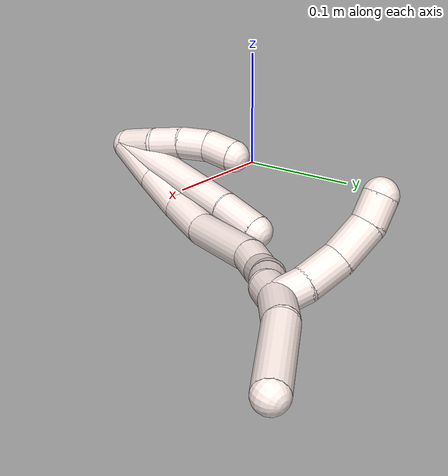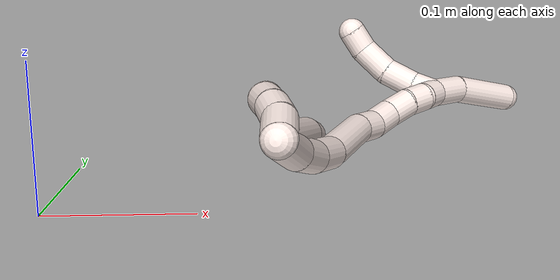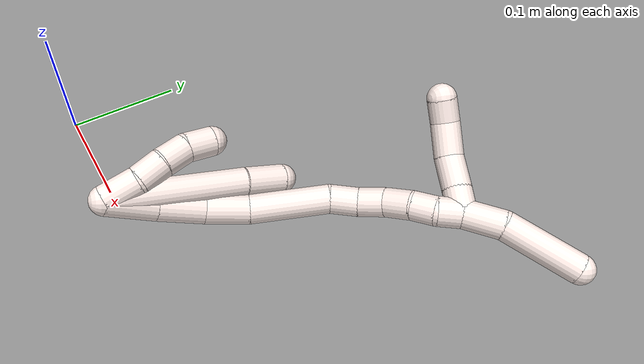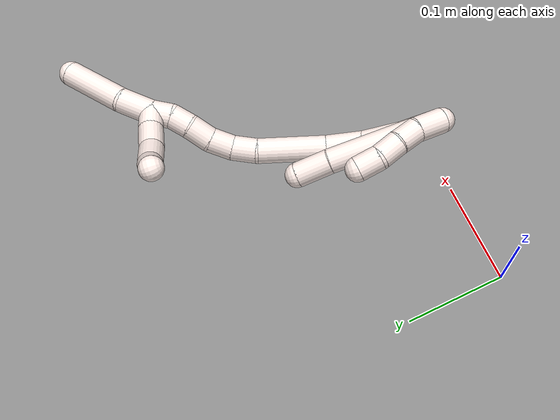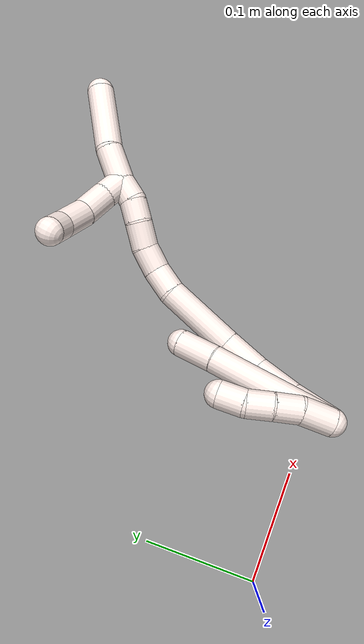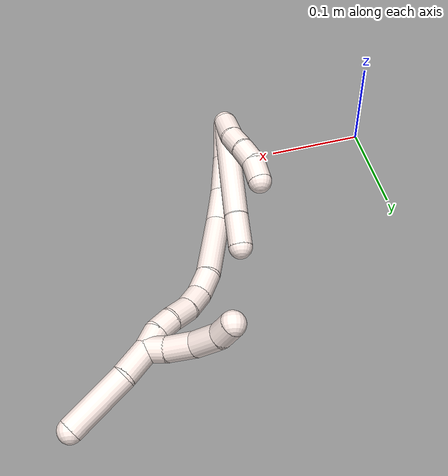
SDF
<sdf version="1.7">
 <world name="default">
  <model name="11">
   <static>0</static>
   <link name="11">
    <collision name="collision-cylinder-e_1_2_8">
     <pose>3.7e-05 -0.00117 0.057671 0.020279 0.000648 7e-06</pose>
     <geometry><cylinder><radius>0.0125</radius><length>0.115367</length></cylinder></geometry>
     <surface>
      <friction><ode><mu>1.16</mu><mu2>1.16</mu2><slip1>0</slip1><slip2>0</slip2></ode></friction>
      <contact><ode><kp>1e+06</kp><kd>1</kd><max_vel>0</max_vel><min_depth>0.001</min_depth></ode></contact>
     </surface>
    </collision>
    <visual name="visual-cylinder-e_1_2_8">
     <pose>3.7e-05 -0.00117 0.057671 0.020279 0.000648 7e-06</pose>
     <geometry><cylinder><radius>0.0125</radius><length>0.115367</length></cylinder></geometry>
     <material><ambient>1 0.933333 0.909804 1</ambient></material>
    </visual>
    <collision name="collision-cylinder-e_2_8_6">
     <pose>-0.001343 -0.002594 0.1326 0.014763 -0.081945 -0.000605</pose>
     <geometry><cylinder><radius>0.0125</radius><length>0.034633</length></cylinder></geometry>
     <surface>
      <friction><ode><mu>1.16</mu><mu2>1.16</mu2><slip1>0</slip1><slip2>0</slip2></ode></friction>
      <contact><ode><kp>1e+06</kp><kd>1</kd><max_vel>0</max_vel><min_depth>0.001</min_depth></ode></contact>
     </surface>
    </collision>
    <visual name="visual-cylinder-e_2_8_6">
     <pose>-0.001343 -0.002594 0.1326 0.014763 -0.081945 -0.000605</pose>
     <geometry><cylinder><radius>0.0125</radius><length>0.034633</length></cylinder></geometry>
     <material><ambient>1 0.933333 0.909804 1</ambient></material>
    </visual>
    <collision name="collision-cylinder-e_1_2_9">
     <pose>0.004799 -0.004649 0.01312 0.340519 0.331984 0.05759</pose>
     <geometry><cylinder><radius>0.0125</radius><length>0.029446</length></cylinder></geometry>
     <surface>
      <friction><ode><mu>1.16</mu><mu2>1.16</mu2><slip1>0</slip1><slip2>0</slip2></ode></friction>
      <contact><ode><kp>1e+06</kp><kd>1</kd><max_vel>0</max_vel><min_depth>0.001</min_depth></ode></contact>
     </surface>
    </collision>
    <visual name="visual-cylinder-e_1_2_9">
     <pose>0.004799 -0.004649 0.01312 0.340519 0.331984 0.05759</pose>
     <geometry><cylinder><radius>0.0125</radius><length>0.029446</length></cylinder></geometry>
     <material><ambient>1 0.933333 0.909804 1</ambient></material>
    </visual>
    <collision name="collision-cylinder-e_2_9_10">
     <pose>0.011746 -0.015148 0.036308 0.526453 0.182494 0.049305</pose>
     <geometry><cylinder><radius>0.0125</radius><length>0.023682</length></cylinder></geometry>
     <surface>
      <friction><ode><mu>1.16</mu><mu2>1.16</mu2><slip1>0</slip1><slip2>0</slip2></ode></friction>
      <contact><ode><kp>1e+06</kp><kd>1</kd><max_vel>0</max_vel><min_depth>0.001</min_depth></ode></contact>
     </surface>
    </collision>
    <visual name="visual-cylinder-e_2_9_10">
     <pose>0.011746 -0.015148 0.036308 0.526453 0.182494 0.049305</pose>
     <geometry><cylinder><radius>0.0125</radius><length>0.023682</length></cylinder></geometry>
     <material><ambient>1 0.933333 0.909804 1</ambient></material>
    </visual>
    <collision name="collision-cylinder-e_3_10_11">
     <pose>0.014445 -0.026365 0.05669 0.479695 0.047307 0.011571</pose>
     <geometry><cylinder><radius>0.0125</radius><length>0.023281</length></cylinder></geometry>
     <surface>
      <friction><ode><mu>1.16</mu><mu2>1.16</mu2><slip1>0</slip1><slip2>0</slip2></ode></friction>
      <contact><ode><kp>1e+06</kp><kd>1</kd><max_vel>0</max_vel><min_depth>0.001</min_depth></ode></contact>
     </surface>
    </collision>
    <visual name="visual-cylinder-e_3_10_11">
     <pose>0.014445 -0.026365 0.05669 0.479695 0.047307 0.011571</pose>
     <geometry><cylinder><radius>0.0125</radius><length>0.023281</length></cylinder></geometry>
     <material><ambient>1 0.933333 0.909804 1</ambient></material>
    </visual>
    <collision name="collision-cylinder-e_4_11_5">
     <pose>0.01475 -0.033948 0.078588 0.189084 -0.020889 -0.001981</pose>
     <geometry><cylinder><radius>0.0125</radius><length>0.023591</length></cylinder></geometry>
     <surface>
      <friction><ode><mu>1.16</mu><mu2>1.16</mu2><slip1>0</slip1><slip2>0</slip2></ode></friction>
      <contact><ode><kp>1e+06</kp><kd>1</kd><max_vel>0</max_vel><min_depth>0.001</min_depth></ode></contact>
     </surface>
    </collision>
    <visual name="visual-cylinder-e_4_11_5">
     <pose>0.01475 -0.033948 0.078588 0.189084 -0.020889 -0.001981</pose>
     <geometry><cylinder><radius>0.0125</radius><length>0.023591</length></cylinder></geometry>
     <material><ambient>1 0.933333 0.909804 1</ambient></material>
    </visual>
    <collision name="collision-cylinder-e_1_2_12">
     <pose>-0.003792 0.003484 0.020176 -0.17098 -0.183142 0.015739</pose>
     <geometry><cylinder><radius>0.0125</radius><length>0.041646</length></cylinder></geometry>
     <surface>
      <friction><ode><mu>1.16</mu><mu2>1.16</mu2><slip1>0</slip1><slip2>0</slip2></ode></friction>
      <contact><ode><kp>1e+06</kp><kd>1</kd><max_vel>0</max_vel><min_depth>0.001</min_depth></ode></contact>
     </surface>
    </collision>
    <visual name="visual-cylinder-e_1_2_12">
     <pose>-0.003792 0.003484 0.020176 -0.17098 -0.183142 0.015739</pose>
     <geometry><cylinder><radius>0.0125</radius><length>0.041646</length></cylinder></geometry>
     <material><ambient>1 0.933333 0.909804 1</ambient></material>
    </visual>
    <collision name="collision-cylinder-e_2_12_13">
     <pose>-0.008593 0.010498 0.059695 -0.180516 -0.051222 0.004637</pose>
     <geometry><cylinder><radius>0.0125</radius><length>0.039376</length></cylinder></geometry>
     <surface>
      <friction><ode><mu>1.16</mu><mu2>1.16</mu2><slip1>0</slip1><slip2>0</slip2></ode></friction>
      <contact><ode><kp>1e+06</kp><kd>1</kd><max_vel>0</max_vel><min_depth>0.001</min_depth></ode></contact>
     </surface>
    </collision>
    <visual name="visual-cylinder-e_2_12_13">
     <pose>-0.008593 0.010498 0.059695 -0.180516 -0.051222 0.004637</pose>
     <geometry><cylinder><radius>0.0125</radius><length>0.039376</length></cylinder></geometry>
     <material><ambient>1 0.933333 0.909804 1</ambient></material>
    </visual>
    <collision name="collision-cylinder-e_3_13_14">
     <pose>-0.007439 0.017431 0.097266 -0.184611 0.116041 -0.010754</pose>
     <geometry><cylinder><radius>0.0125</radius><length>0.037336</length></cylinder></geometry>
     <surface>
      <friction><ode><mu>1.16</mu><mu2>1.16</mu2><slip1>0</slip1><slip2>0</slip2></ode></friction>
      <contact><ode><kp>1e+06</kp><kd>1</kd><max_vel>0</max_vel><min_depth>0.001</min_depth></ode></contact>
     </surface>
    </collision>
    <visual name="visual-cylinder-e_3_13_14">
     <pose>-0.007439 0.017431 0.097266 -0.184611 0.116041 -0.010754</pose>
     <geometry><cylinder><radius>0.0125</radius><length>0.037336</length></cylinder></geometry>
     <material><ambient>1 0.933333 0.909804 1</ambient></material>
    </visual>
    <collision name="collision-cylinder-e_4_14_15">
     <pose>0.005407 0.02434 0.147823 -0.107979 0.317449 -0.017301</pose>
     <geometry><cylinder><radius>0.0125</radius><length>0.068459</length></cylinder></geometry>
     <surface>
      <friction><ode><mu>1.16</mu><mu2>1.16</mu2><slip1>0</slip1><slip2>0</slip2></ode></friction>
      <contact><ode><kp>1e+06</kp><kd>1</kd><max_vel>0</max_vel><min_depth>0.001</min_depth></ode></contact>
     </surface>
    </collision>
    <visual name="visual-cylinder-e_4_14_15">
     <pose>0.005407 0.02434 0.147823 -0.107979 0.317449 -0.017301</pose>
     <geometry><cylinder><radius>0.0125</radius><length>0.068459</length></cylinder></geometry>
     <material><ambient>1 0.933333 0.909804 1</ambient></material>
    </visual>
    <collision name="collision-cylinder-e_5_15_16">
     <pose>0.019651 0.032158 0.191302 -0.369142 0.289415 -0.054399</pose>
     <geometry><cylinder><radius>0.0125</radius><length>0.024947</length></cylinder></geometry>
     <surface>
      <friction><ode><mu>1.16</mu><mu2>1.16</mu2><slip1>0</slip1><slip2>0</slip2></ode></friction>
      <contact><ode><kp>1e+06</kp><kd>1</kd><max_vel>0</max_vel><min_depth>0.001</min_depth></ode></contact>
     </surface>
    </collision>
    <visual name="visual-cylinder-e_5_15_16">
     <pose>0.019651 0.032158 0.191302 -0.369142 0.289415 -0.054399</pose>
     <geometry><cylinder><radius>0.0125</radius><length>0.024947</length></cylinder></geometry>
     <material><ambient>1 0.933333 0.909804 1</ambient></material>
    </visual>
    <collision name="collision-cylinder-e_6_16_17">
     <pose>0.030001 0.040344 0.211404 -0.408263 0.608112 -0.129735</pose>
     <geometry><cylinder><radius>0.0125</radius><length>0.02377</length></cylinder></geometry>
     <surface>
      <friction><ode><mu>1.16</mu><mu2>1.16</mu2><slip1>0</slip1><slip2>0</slip2></ode></friction>
      <contact><ode><kp>1e+06</kp><kd>1</kd><max_vel>0</max_vel><min_depth>0.001</min_depth></ode></contact>
     </surface>
    </collision>
    <visual name="visual-cylinder-e_6_16_17">
     <pose>0.030001 0.040344 0.211404 -0.408263 0.608112 -0.129735</pose>
     <geometry><cylinder><radius>0.0125</radius><length>0.02377</length></cylinder></geometry>
     <material><ambient>1 0.933333 0.909804 1</ambient></material>
    </visual>
    <collision name="collision-cylinder-e_7_17_18">
     <pose>0.044816 0.04971 0.227311 -0.668614 0.735854 -0.266205</pose>
     <geometry><cylinder><radius>0.0125</radius><length>0.023911</length></cylinder></geometry>
     <surface>
      <friction><ode><mu>1.16</mu><mu2>1.16</mu2><slip1>0</slip1><slip2>0</slip2></ode></friction>
      <contact><ode><kp>1e+06</kp><kd>1</kd><max_vel>0</max_vel><min_depth>0.001</min_depth></ode></contact>
     </surface>
    </collision>
    <visual name="visual-cylinder-e_7_17_18">
     <pose>0.044816 0.04971 0.227311 -0.668614 0.735854 -0.266205</pose>
     <geometry><cylinder><radius>0.0125</radius><length>0.023911</length></cylinder></geometry>
     <material><ambient>1 0.933333 0.909804 1</ambient></material>
    </visual>
    <collision name="collision-cylinder-e_8_18_19">
     <pose>0.058152 0.060608 0.2409 -0.683532 0.555501 -0.202158</pose>
     <geometry><cylinder><radius>0.0125</radius><length>0.020145</length></cylinder></geometry>
     <surface>
      <friction><ode><mu>1.16</mu><mu2>1.16</mu2><slip1>0</slip1><slip2>0</slip2></ode></friction>
      <contact><ode><kp>1e+06</kp><kd>1</kd><max_vel>0</max_vel><min_depth>0.001</min_depth></ode></contact>
     </surface>
    </collision>
    <visual name="visual-cylinder-e_8_18_19">
     <pose>0.058152 0.060608 0.2409 -0.683532 0.555501 -0.202158</pose>
     <geometry><cylinder><radius>0.0125</radius><length>0.020145</length></cylinder></geometry>
     <material><ambient>1 0.933333 0.909804 1</ambient></material>
    </visual>
    <collision name="collision-cylinder-e_9_19_1">
     <pose>0.067162 0.069565 0.256359 -0.38276 0.370784 -0.072643</pose>
     <geometry><cylinder><radius>0.0125</radius><length>0.02041</length></cylinder></geometry>
     <surface>
      <friction><ode><mu>1.16</mu><mu2>1.16</mu2><slip1>0</slip1><slip2>0</slip2></ode></friction>
      <contact><ode><kp>1e+06</kp><kd>1</kd><max_vel>0</max_vel><min_depth>0.001</min_depth></ode></contact>
     </surface>
    </collision>
    <visual name="visual-cylinder-e_9_19_1">
     <pose>0.067162 0.069565 0.256359 -0.38276 0.370784 -0.072643</pose>
     <geometry><cylinder><radius>0.0125</radius><length>0.02041</length></cylinder></geometry>
     <material><ambient>1 0.933333 0.909804 1</ambient></material>
    </visual>
    <collision name="collision-cylinder-e_1_1_20">
     <pose>0.077152 0.082259 0.277993 -0.619771 0.380353 -0.123124</pose>
     <geometry><cylinder><radius>0.0125</radius><length>0.0339</length></cylinder></geometry>
     <surface>
      <friction><ode><mu>1.16</mu><mu2>1.16</mu2><slip1>0</slip1><slip2>0</slip2></ode></friction>
      <contact><ode><kp>1e+06</kp><kd>1</kd><max_vel>0</max_vel><min_depth>0.001</min_depth></ode></contact>
     </surface>
    </collision>
    <visual name="visual-cylinder-e_1_1_20">
     <pose>0.077152 0.082259 0.277993 -0.619771 0.380353 -0.123124</pose>
     <geometry><cylinder><radius>0.0125</radius><length>0.0339</length></cylinder></geometry>
     <material><ambient>1 0.933333 0.909804 1</ambient></material>
    </visual>
    <collision name="collision-cylinder-e_2_20_4">
     <pose>0.090074 0.115176 0.312785 -0.824609 0.201938 -0.088566</pose>
     <geometry><cylinder><radius>0.0125</radius><length>0.0661</length></cylinder></geometry>
     <surface>
      <friction><ode><mu>1.16</mu><mu2>1.16</mu2><slip1>0</slip1><slip2>0</slip2></ode></friction>
      <contact><ode><kp>1e+06</kp><kd>1</kd><max_vel>0</max_vel><min_depth>0.001</min_depth></ode></contact>
     </surface>
    </collision>
    <visual name="visual-cylinder-e_2_20_4">
     <pose>0.090074 0.115176 0.312785 -0.824609 0.201938 -0.088566</pose>
     <geometry><cylinder><radius>0.0125</radius><length>0.0661</length></cylinder></geometry>
     <material><ambient>1 0.933333 0.909804 1</ambient></material>
    </visual>
    <collision name="collision-cylinder-e_1_1_21">
     <pose>0.070367 0.06281 0.267088 1.38793 -0.046972 -0.039084</pose>
     <geometry><cylinder><radius>0.0125</radius><length>0.020988</length></cylinder></geometry>
     <surface>
      <friction><ode><mu>1.16</mu><mu2>1.16</mu2><slip1>0</slip1><slip2>0</slip2></ode></friction>
      <contact><ode><kp>1e+06</kp><kd>1</kd><max_vel>0</max_vel><min_depth>0.001</min_depth></ode></contact>
     </surface>
    </collision>
    <visual name="visual-cylinder-e_1_1_21">
     <pose>0.070367 0.06281 0.267088 1.38793 -0.046972 -0.039084</pose>
     <geometry><cylinder><radius>0.0125</radius><length>0.020988</length></cylinder></geometry>
     <material><ambient>1 0.933333 0.909804 1</ambient></material>
    </visual>
    <collision name="collision-cylinder-e_2_21_22">
     <pose>0.070926 0.038273 0.269805 1.51391 0.073635 0.069564</pose>
     <geometry><cylinder><radius>0.0125</radius><length>0.028582</length></cylinder></geometry>
     <surface>
      <friction><ode><mu>1.16</mu><mu2>1.16</mu2><slip1>0</slip1><slip2>0</slip2></ode></friction>
      <contact><ode><kp>1e+06</kp><kd>1</kd><max_vel>0</max_vel><min_depth>0.001</min_depth></ode></contact>
     </surface>
    </collision>
    <visual name="visual-cylinder-e_2_21_22">
     <pose>0.070926 0.038273 0.269805 1.51391 0.073635 0.069564</pose>
     <geometry><cylinder><radius>0.0125</radius><length>0.028582</length></cylinder></geometry>
     <material><ambient>1 0.933333 0.909804 1</ambient></material>
    </visual>
    <collision name="collision-cylinder-e_3_22_23">
     <pose>0.077076 0.010033 0.2709 1.55046 0.348949 0.342062</pose>
     <geometry><cylinder><radius>0.0125</radius><length>0.029825</length></cylinder></geometry>
     <surface>
      <friction><ode><mu>1.16</mu><mu2>1.16</mu2><slip1>0</slip1><slip2>0</slip2></ode></friction>
      <contact><ode><kp>1e+06</kp><kd>1</kd><max_vel>0</max_vel><min_depth>0.001</min_depth></ode></contact>
     </surface>
    </collision>
    <visual name="visual-cylinder-e_3_22_23">
     <pose>0.077076 0.010033 0.2709 1.55046 0.348949 0.342062</pose>
     <geometry><cylinder><radius>0.0125</radius><length>0.029825</length></cylinder></geometry>
     <material><ambient>1 0.933333 0.909804 1</ambient></material>
    </visual>
    <collision name="collision-cylinder-e_4_23_3">
     <pose>0.087891 -0.012329 0.269258 1.79748 0.588212 0.727521</pose>
     <geometry><cylinder><radius>0.0125</radius><length>0.020606</length></cylinder></geometry>
     <surface>
      <friction><ode><mu>1.16</mu><mu2>1.16</mu2><slip1>0</slip1><slip2>0</slip2></ode></friction>
      <contact><ode><kp>1e+06</kp><kd>1</kd><max_vel>0</max_vel><min_depth>0.001</min_depth></ode></contact>
     </surface>
    </collision>
    <visual name="visual-cylinder-e_4_23_3">
     <pose>0.087891 -0.012329 0.269258 1.79748 0.588212 0.727521</pose>
     <geometry><cylinder><radius>0.0125</radius><length>0.020606</length></cylinder></geometry>
     <material><ambient>1 0.933333 0.909804 1</ambient></material>
    </visual>
    <collision name="collision-sphere-3">
     <pose>0.093608 -0.020681 0.267332 0 -0 0</pose>
     <geometry><sphere><radius>0.0125</radius></sphere></geometry>
     <surface>
      <friction><ode><mu>1.16</mu><mu2>1.16</mu2><slip1>0</slip1><slip2>0</slip2></ode></friction>
      <contact><ode><kp>1e+06</kp><kd>1</kd><max_vel>0</max_vel><min_depth>0.001</min_depth></ode></contact>
     </surface>
    </collision>
    <visual name="visual-sphere-3">
     <pose>0.093608 -0.020681 0.267332 0 -0 0</pose>
     <geometry><sphere><radius>0.0125</radius></sphere></geometry>
     <material><ambient>1 0.933333 0.909804 1</ambient></material>
    </visual>
    <collision name="collision-sphere-23">
     <pose>0.082174 -0.003977 0.271185 0 -0 0</pose>
     <geometry><sphere><radius>0.0125</radius></sphere></geometry>
     <surface>
      <friction><ode><mu>1.16</mu><mu2>1.16</mu2><slip1>0</slip1><slip2>0</slip2></ode></friction>
      <contact><ode><kp>1e+06</kp><kd>1</kd><max_vel>0</max_vel><min_depth>0.001</min_depth></ode></contact>
     </surface>
    </collision>
    <visual name="visual-sphere-23">
     <pose>0.082174 -0.003977 0.271185 0 -0 0</pose>
     <geometry><sphere><radius>0.0125</radius></sphere></geometry>
     <material><ambient>1 0.933333 0.909804 1</ambient></material>
    </visual>
    <collision name="collision-sphere-22">
     <pose>0.071977 0.024044 0.270615 0 -0 0</pose>
     <geometry><sphere><radius>0.0125</radius></sphere></geometry>
     <surface>
      <friction><ode><mu>1.16</mu><mu2>1.16</mu2><slip1>0</slip1><slip2>0</slip2></ode></friction>
      <contact><ode><kp>1e+06</kp><kd>1</kd><max_vel>0</max_vel><min_depth>0.001</min_depth></ode></contact>
     </surface>
    </collision>
    <visual name="visual-sphere-22">
     <pose>0.071977 0.024044 0.270615 0 -0 0</pose>
     <geometry><sphere><radius>0.0125</radius></sphere></geometry>
     <material><ambient>1 0.933333 0.909804 1</ambient></material>
    </visual>
    <collision name="collision-sphere-21">
     <pose>0.069874 0.052502 0.268994 0 -0 0</pose>
     <geometry><sphere><radius>0.0125</radius></sphere></geometry>
     <surface>
      <friction><ode><mu>1.16</mu><mu2>1.16</mu2><slip1>0</slip1><slip2>0</slip2></ode></friction>
      <contact><ode><kp>1e+06</kp><kd>1</kd><max_vel>0</max_vel><min_depth>0.001</min_depth></ode></contact>
     </surface>
    </collision>
    <visual name="visual-sphere-21">
     <pose>0.069874 0.052502 0.268994 0 -0 0</pose>
     <geometry><sphere><radius>0.0125</radius></sphere></geometry>
     <material><ambient>1 0.933333 0.909804 1</ambient></material>
    </visual>
    <collision name="collision-sphere-4">
     <pose>0.096703 0.138951 0.334764 0 -0 0</pose>
     <geometry><sphere><radius>0.0125</radius></sphere></geometry>
     <surface>
      <friction><ode><mu>1.16</mu><mu2>1.16</mu2><slip1>0</slip1><slip2>0</slip2></ode></friction>
      <contact><ode><kp>1e+06</kp><kd>1</kd><max_vel>0</max_vel><min_depth>0.001</min_depth></ode></contact>
     </surface>
    </collision>
    <visual name="visual-sphere-4">
     <pose>0.096703 0.138951 0.334764 0 -0 0</pose>
     <geometry><sphere><radius>0.0125</radius></sphere></geometry>
     <material><ambient>1 0.933333 0.909804 1</ambient></material>
    </visual>
    <collision name="collision-sphere-20">
     <pose>0.083445 0.091401 0.290805 0 -0 0</pose>
     <geometry><sphere><radius>0.0125</radius></sphere></geometry>
     <surface>
      <friction><ode><mu>1.16</mu><mu2>1.16</mu2><slip1>0</slip1><slip2>0</slip2></ode></friction>
      <contact><ode><kp>1e+06</kp><kd>1</kd><max_vel>0</max_vel><min_depth>0.001</min_depth></ode></contact>
     </surface>
    </collision>
    <visual name="visual-sphere-20">
     <pose>0.083445 0.091401 0.290805 0 -0 0</pose>
     <geometry><sphere><radius>0.0125</radius></sphere></geometry>
     <material><ambient>1 0.933333 0.909804 1</ambient></material>
    </visual>
    <collision name="collision-sphere-11">
     <pose>0.014996 -0.031731 0.067005 0 -0 0</pose>
     <geometry><sphere><radius>0.0125</radius></sphere></geometry>
     <surface>
      <friction><ode><mu>1.16</mu><mu2>1.16</mu2><slip1>0</slip1><slip2>0</slip2></ode></friction>
      <contact><ode><kp>1e+06</kp><kd>1</kd><max_vel>0</max_vel><min_depth>0.001</min_depth></ode></contact>
     </surface>
    </collision>
    <visual name="visual-sphere-11">
     <pose>0.014996 -0.031731 0.067005 0 -0 0</pose>
     <geometry><sphere><radius>0.0125</radius></sphere></geometry>
     <material><ambient>1 0.933333 0.909804 1</ambient></material>
    </visual>
    <collision name="collision-sphere-10">
     <pose>0.013895 -0.020999 0.046375 0 -0 0</pose>
     <geometry><sphere><radius>0.0125</radius></sphere></geometry>
     <surface>
      <friction><ode><mu>1.16</mu><mu2>1.16</mu2><slip1>0</slip1><slip2>0</slip2></ode></friction>
      <contact><ode><kp>1e+06</kp><kd>1</kd><max_vel>0</max_vel><min_depth>0.001</min_depth></ode></contact>
     </surface>
    </collision>
    <visual name="visual-sphere-10">
     <pose>0.013895 -0.020999 0.046375 0 -0 0</pose>
     <geometry><sphere><radius>0.0125</radius></sphere></geometry>
     <material><ambient>1 0.933333 0.909804 1</ambient></material>
    </visual>
    <collision name="collision-sphere-6">
     <pose>-0.00276 -0.002849 0.149856 0 -0 0</pose>
     <geometry><sphere><radius>0.0125</radius></sphere></geometry>
     <surface>
      <friction><ode><mu>1.16</mu><mu2>1.16</mu2><slip1>0</slip1><slip2>0</slip2></ode></friction>
      <contact><ode><kp>1e+06</kp><kd>1</kd><max_vel>0</max_vel><min_depth>0.001</min_depth></ode></contact>
     </surface>
    </collision>
    <visual name="visual-sphere-6">
     <pose>-0.00276 -0.002849 0.149856 0 -0 0</pose>
     <geometry><sphere><radius>0.0125</radius></sphere></geometry>
     <material><ambient>1 0.933333 0.909804 1</ambient></material>
    </visual>
    <collision name="collision-sphere-9">
     <pose>0.009597 -0.009297 0.02624 0 -0 0</pose>
     <geometry><sphere><radius>0.0125</radius></sphere></geometry>
     <surface>
      <friction><ode><mu>1.16</mu><mu2>1.16</mu2><slip1>0</slip1><slip2>0</slip2></ode></friction>
      <contact><ode><kp>1e+06</kp><kd>1</kd><max_vel>0</max_vel><min_depth>0.001</min_depth></ode></contact>
     </surface>
    </collision>
    <visual name="visual-sphere-9">
     <pose>0.009597 -0.009297 0.02624 0 -0 0</pose>
     <geometry><sphere><radius>0.0125</radius></sphere></geometry>
     <material><ambient>1 0.933333 0.909804 1</ambient></material>
    </visual>
    <collision name="collision-sphere-2">
     <geometry><sphere><radius>0.0125</radius></sphere></geometry>
     <surface>
      <friction><ode><mu>1.16</mu><mu2>1.16</mu2><slip1>0</slip1><slip2>0</slip2></ode></friction>
      <contact><ode><kp>1e+06</kp><kd>1</kd><max_vel>0</max_vel><min_depth>0.001</min_depth></ode></contact>
     </surface>
    </collision>
    <visual name="visual-sphere-2">
     <geometry><sphere><radius>0.0125</radius></sphere></geometry>
     <material><ambient>1 0.933333 0.909804 1</ambient></material>
    </visual>
    <collision name="collision-sphere-19">
     <pose>0.063464 0.066013 0.247535 0 -0 0</pose>
     <geometry><sphere><radius>0.0125</radius></sphere></geometry>
     <surface>
      <friction><ode><mu>1.16</mu><mu2>1.16</mu2><slip1>0</slip1><slip2>0</slip2></ode></friction>
      <contact><ode><kp>1e+06</kp><kd>1</kd><max_vel>0</max_vel><min_depth>0.001</min_depth></ode></contact>
     </surface>
    </collision>
    <visual name="visual-sphere-19">
     <pose>0.063464 0.066013 0.247535 0 -0 0</pose>
     <geometry><sphere><radius>0.0125</radius></sphere></geometry>
     <material><ambient>1 0.933333 0.909804 1</ambient></material>
    </visual>
    <collision name="collision-sphere-8">
     <pose>7.5e-05 -0.002339 0.115343 0 -0 0</pose>
     <geometry><sphere><radius>0.0125</radius></sphere></geometry>
     <surface>
      <friction><ode><mu>1.16</mu><mu2>1.16</mu2><slip1>0</slip1><slip2>0</slip2></ode></friction>
      <contact><ode><kp>1e+06</kp><kd>1</kd><max_vel>0</max_vel><min_depth>0.001</min_depth></ode></contact>
     </surface>
    </collision>
    <visual name="visual-sphere-8">
     <pose>7.5e-05 -0.002339 0.115343 0 -0 0</pose>
     <geometry><sphere><radius>0.0125</radius></sphere></geometry>
     <material><ambient>1 0.933333 0.909804 1</ambient></material>
    </visual>
    <collision name="collision-sphere-5">
     <pose>0.014503 -0.036165 0.090171 0 -0 0</pose>
     <geometry><sphere><radius>0.0125</radius></sphere></geometry>
     <surface>
      <friction><ode><mu>1.16</mu><mu2>1.16</mu2><slip1>0</slip1><slip2>0</slip2></ode></friction>
      <contact><ode><kp>1e+06</kp><kd>1</kd><max_vel>0</max_vel><min_depth>0.001</min_depth></ode></contact>
     </surface>
    </collision>
    <visual name="visual-sphere-5">
     <pose>0.014503 -0.036165 0.090171 0 -0 0</pose>
     <geometry><sphere><radius>0.0125</radius></sphere></geometry>
     <material><ambient>1 0.933333 0.909804 1</ambient></material>
    </visual>
    <collision name="collision-sphere-12">
     <pose>-0.007585 0.006967 0.040353 0 -0 0</pose>
     <geometry><sphere><radius>0.0125</radius></sphere></geometry>
     <surface>
      <friction><ode><mu>1.16</mu><mu2>1.16</mu2><slip1>0</slip1><slip2>0</slip2></ode></friction>
      <contact><ode><kp>1e+06</kp><kd>1</kd><max_vel>0</max_vel><min_depth>0.001</min_depth></ode></contact>
     </surface>
    </collision>
    <visual name="visual-sphere-12">
     <pose>-0.007585 0.006967 0.040353 0 -0 0</pose>
     <geometry><sphere><radius>0.0125</radius></sphere></geometry>
     <material><ambient>1 0.933333 0.909804 1</ambient></material>
    </visual>
    <collision name="collision-sphere-13">
     <pose>-0.009601 0.014028 0.079038 0 -0 0</pose>
     <geometry><sphere><radius>0.0125</radius></sphere></geometry>
     <surface>
      <friction><ode><mu>1.16</mu><mu2>1.16</mu2><slip1>0</slip1><slip2>0</slip2></ode></friction>
      <contact><ode><kp>1e+06</kp><kd>1</kd><max_vel>0</max_vel><min_depth>0.001</min_depth></ode></contact>
     </surface>
    </collision>
    <visual name="visual-sphere-13">
     <pose>-0.009601 0.014028 0.079038 0 -0 0</pose>
     <geometry><sphere><radius>0.0125</radius></sphere></geometry>
     <material><ambient>1 0.933333 0.909804 1</ambient></material>
    </visual>
    <collision name="collision-sphere-14">
     <pose>-0.005278 0.020835 0.115493 0 -0 0</pose>
     <geometry><sphere><radius>0.0125</radius></sphere></geometry>
     <surface>
      <friction><ode><mu>1.16</mu><mu2>1.16</mu2><slip1>0</slip1><slip2>0</slip2></ode></friction>
      <contact><ode><kp>1e+06</kp><kd>1</kd><max_vel>0</max_vel><min_depth>0.001</min_depth></ode></contact>
     </surface>
    </collision>
    <visual name="visual-sphere-14">
     <pose>-0.005278 0.020835 0.115493 0 -0 0</pose>
     <geometry><sphere><radius>0.0125</radius></sphere></geometry>
     <material><ambient>1 0.933333 0.909804 1</ambient></material>
    </visual>
    <collision name="collision-sphere-15">
     <pose>0.016091 0.027844 0.180153 0 -0 0</pose>
     <geometry><sphere><radius>0.0125</radius></sphere></geometry>
     <surface>
      <friction><ode><mu>1.16</mu><mu2>1.16</mu2><slip1>0</slip1><slip2>0</slip2></ode></friction>
      <contact><ode><kp>1e+06</kp><kd>1</kd><max_vel>0</max_vel><min_depth>0.001</min_depth></ode></contact>
     </surface>
    </collision>
    <visual name="visual-sphere-15">
     <pose>0.016091 0.027844 0.180153 0 -0 0</pose>
     <geometry><sphere><radius>0.0125</radius></sphere></geometry>
     <material><ambient>1 0.933333 0.909804 1</ambient></material>
    </visual>
    <collision name="collision-sphere-16">
     <pose>0.023211 0.036471 0.202452 0 -0 0</pose>
     <geometry><sphere><radius>0.0125</radius></sphere></geometry>
     <surface>
      <friction><ode><mu>1.16</mu><mu2>1.16</mu2><slip1>0</slip1><slip2>0</slip2></ode></friction>
      <contact><ode><kp>1e+06</kp><kd>1</kd><max_vel>0</max_vel><min_depth>0.001</min_depth></ode></contact>
     </surface>
    </collision>
    <visual name="visual-sphere-16">
     <pose>0.023211 0.036471 0.202452 0 -0 0</pose>
     <geometry><sphere><radius>0.0125</radius></sphere></geometry>
     <material><ambient>1 0.933333 0.909804 1</ambient></material>
    </visual>
    <collision name="collision-sphere-17">
     <pose>0.036791 0.044217 0.220357 0 -0 0</pose>
     <geometry><sphere><radius>0.0125</radius></sphere></geometry>
     <surface>
      <friction><ode><mu>1.16</mu><mu2>1.16</mu2><slip1>0</slip1><slip2>0</slip2></ode></friction>
      <contact><ode><kp>1e+06</kp><kd>1</kd><max_vel>0</max_vel><min_depth>0.001</min_depth></ode></contact>
     </surface>
    </collision>
    <visual name="visual-sphere-17">
     <pose>0.036791 0.044217 0.220357 0 -0 0</pose>
     <geometry><sphere><radius>0.0125</radius></sphere></geometry>
     <material><ambient>1 0.933333 0.909804 1</ambient></material>
    </visual>
    <collision name="collision-sphere-18">
     <pose>0.05284 0.055204 0.234265 0 -0 0</pose>
     <geometry><sphere><radius>0.0125</radius></sphere></geometry>
     <surface>
      <friction><ode><mu>1.16</mu><mu2>1.16</mu2><slip1>0</slip1><slip2>0</slip2></ode></friction>
      <contact><ode><kp>1e+06</kp><kd>1</kd><max_vel>0</max_vel><min_depth>0.001</min_depth></ode></contact>
     </surface>
    </collision>
    <visual name="visual-sphere-18">
     <pose>0.05284 0.055204 0.234265 0 -0 0</pose>
     <geometry><sphere><radius>0.0125</radius></sphere></geometry>
     <material><ambient>1 0.933333 0.909804 1</ambient></material>
    </visual>
    <collision name="collision-sphere-1">
     <pose>0.07086 0.073118 0.265182 0 -0 0</pose>
     <geometry><sphere><radius>0.0125</radius></sphere></geometry>
     <surface>
      <friction><ode><mu>1.16</mu><mu2>1.16</mu2><slip1>0</slip1><slip2>0</slip2></ode></friction>
      <contact><ode><kp>1e+06</kp><kd>1</kd><max_vel>0</max_vel><min_depth>0.001</min_depth></ode></contact>
     </surface>
    </collision>
    <visual name="visual-sphere-1">
     <pose>0.07086 0.073118 0.265182 0 -0 0</pose>
     <geometry><sphere><radius>0.0125</radius></sphere></geometry>
     <material><ambient>1 0.933333 0.909804 1</ambient></material>
    </visual>
    <inertial>
     <pose>0.028877 0.025587 0.153293 0 -0 0</pose>
     <mass>0.75</mass>
     <inertia><ixx>0.000249</ixx><ixy>0</ixy><ixz>0</ixz><iyy>0.000225</iyy><iyz>0</iyz><izz>5e-06</izz></inertia>
    </inertial>
   </link>
   <pose>0.153126 -0.011413 0.0513 -2.13521 -1.12634 0.340961</pose>
  </model>
 </world>
</sdf>
